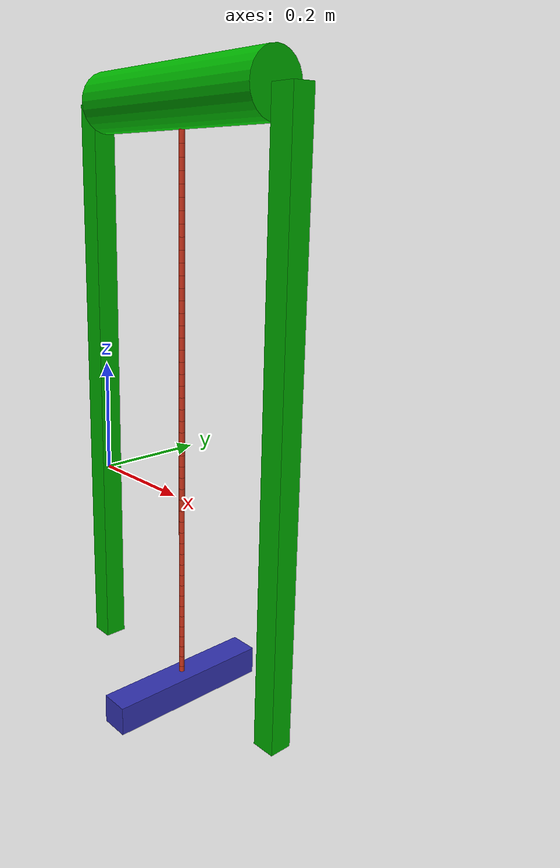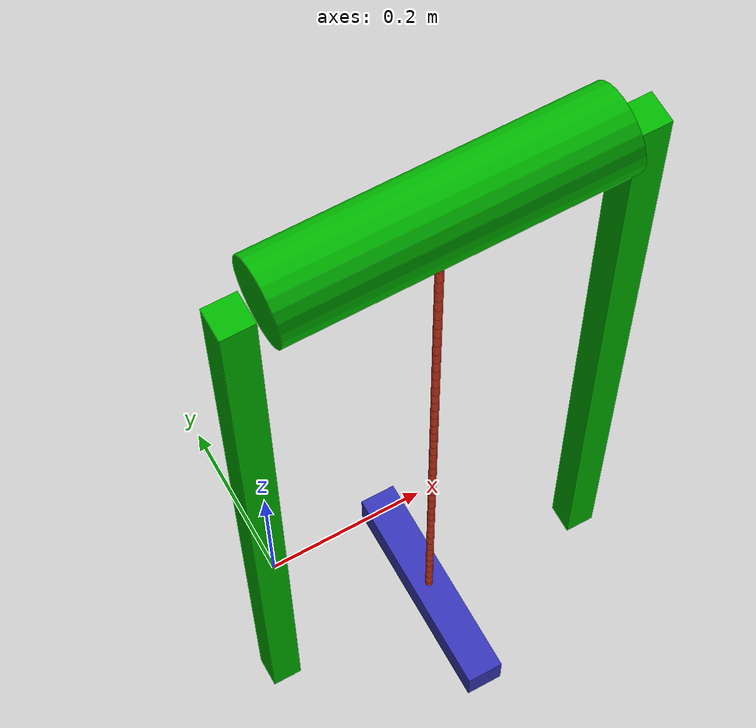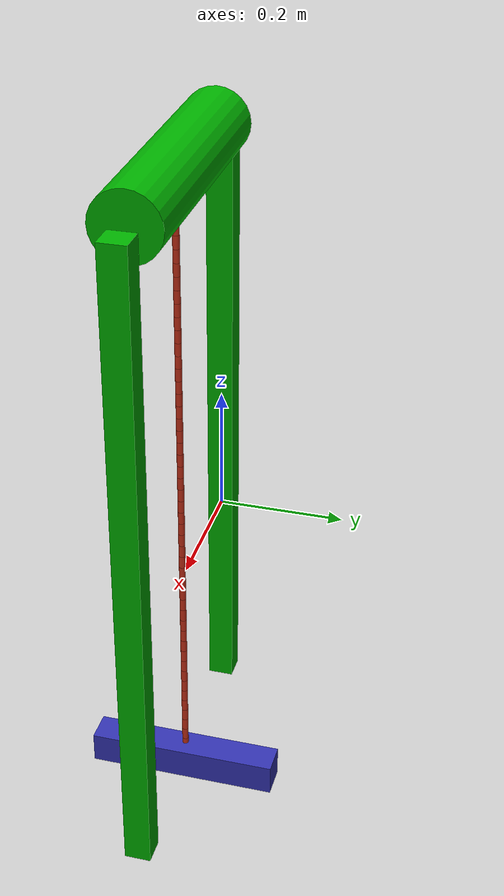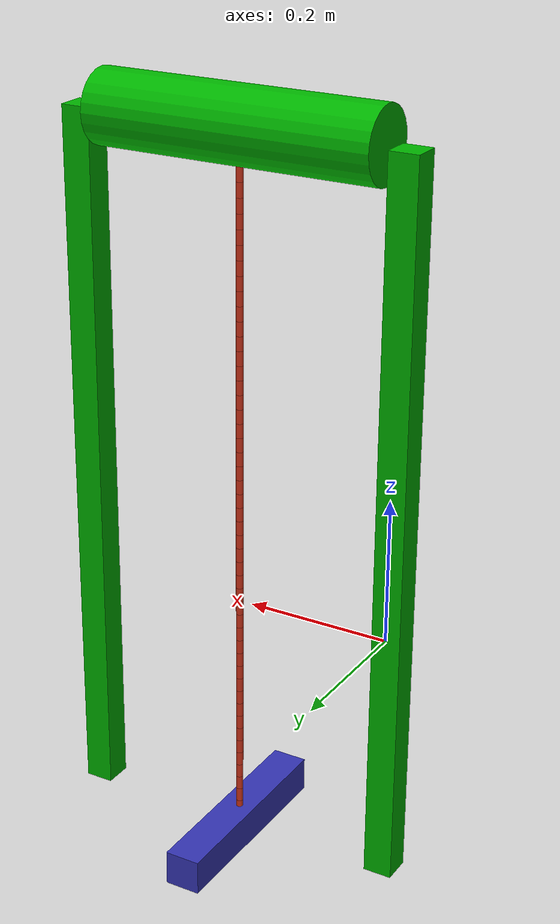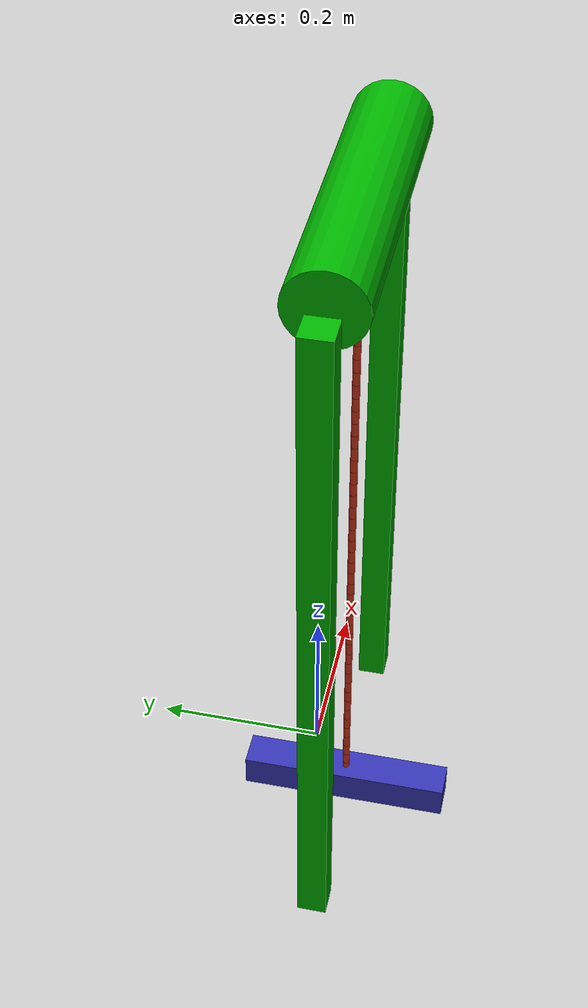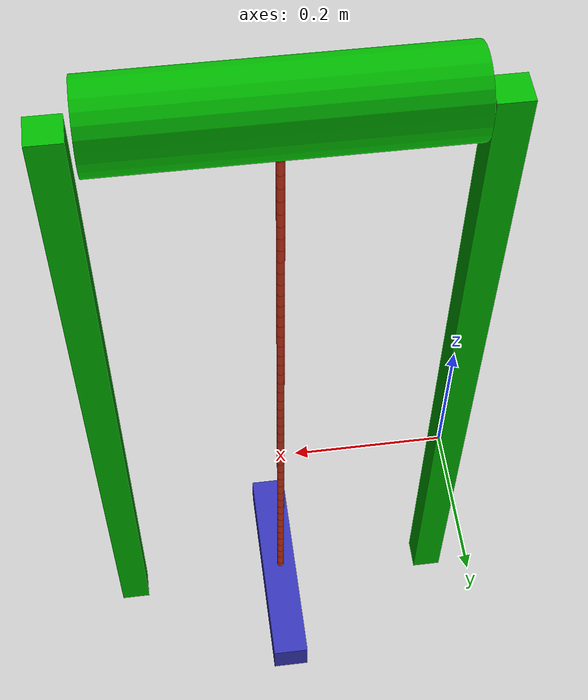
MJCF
<mujoco model="slingshot">
  <compiler angle="radian" autolimits="true"/>
  <option timestep="0.001" jacobian="dense"/>
  <size njmax="1500" nconmax="500" nkey="1"/>
  <visual>
    <global elevation="-30"/>
  </visual>
  <statistic extent="1" center="0 0 0.2"/>
  <default class="main">
    <geom friction="0.5 0.005 0.0001" solref="0.01 5" solimp="0.5 0.99 0.001 0.5 2"/>
  </default>
  <extension>
    <plugin plugin="mujoco.elasticity.cable"/>
  </extension>
  <worldbody>
    <geom name="leg1" size="0.02 0.02 0.5" pos="-0.01 0 0.15" type="box" rgba="0 0.7 0 1"/>
    <light pos="0.5 0 2" dir="0 0 -1"/>
    <body name="leg2">
      <geom name="leg2" size="0.02 0.02 0.5" pos="0.45 0 0.15" type="box" rgba="0 0.7 0 1"/>
    </body>
    <body name="pulley" pos="0.22 0 0.65" quat="0.707107 0 0.707107 0">
      <joint name="pin" pos="0 0 0" axis="0 0 1" damping="1"/>
      <geom size="0.05 0.2" type="cylinder" rgba="0 0.7 0 1"/>
      <body name="CB0">
        <geom name="CG0" size="0.005 0.01" quat="0.707107 0 0.707107 0" type="capsule" friction="1 0.005 0.0001" solref="0.02 1" solimp="0.9 0.95 0.001 0.5 2" rgba="0.8 0.2 0.1 1"/>
        <body name="CB1" pos="0.02 0 0">
          <joint name="CJ0_1" pos="-0.01 0 0" axis="0 1 0" group="3" armature="1e-05" damping="0.0001"/>
          <joint name="CJ1_1" pos="-0.01 0 0" axis="0 0 1" group="3" armature="1e-05" damping="0.0001"/>
          <geom name="CG1" size="0.005 0.01" quat="0.707107 0 0.707107 0" type="capsule" friction="1 0.005 0.0001" solref="0.02 1" solimp="0.9 0.95 0.001 0.5 2" rgba="0.8 0.2 0.1 1"/>
          <body name="CB2" pos="0.02 0 0">
            <joint name="CJ0_2" pos="-0.01 0 0" axis="0 1 0" group="3" armature="1e-05" damping="0.0001"/>
            <joint name="CJ1_2" pos="-0.01 0 0" axis="0 0 1" group="3" armature="1e-05" damping="0.0001"/>
            <geom name="CG2" size="0.005 0.01" quat="0.707107 0 0.707107 0" type="capsule" friction="1 0.005 0.0001" solref="0.02 1" solimp="0.9 0.95 0.001 0.5 2" rgba="0.8 0.2 0.1 1"/>
            <body name="CB3" pos="0.02 0 0">
              <joint name="CJ0_3" pos="-0.01 0 0" axis="0 1 0" group="3" armature="1e-05" damping="0.0001"/>
              <joint name="CJ1_3" pos="-0.01 0 0" axis="0 0 1" group="3" armature="1e-05" damping="0.0001"/>
              <geom name="CG3" size="0.005 0.01" quat="0.707107 0 0.707107 0" type="capsule" friction="1 0.005 0.0001" solref="0.02 1" solimp="0.9 0.95 0.001 0.5 2" rgba="0.8 0.2 0.1 1"/>
              <body name="CB4" pos="0.02 0 0">
                <joint name="CJ0_4" pos="-0.01 0 0" axis="0 1 0" group="3" armature="1e-05" damping="0.0001"/>
                <joint name="CJ1_4" pos="-0.01 0 0" axis="0 0 1" group="3" armature="1e-05" damping="0.0001"/>
                <geom name="CG4" size="0.005 0.01" quat="0.707107 0 0.707107 0" type="capsule" friction="1 0.005 0.0001" solref="0.02 1" solimp="0.9 0.95 0.001 0.5 2" rgba="0.8 0.2 0.1 1"/>
                <body name="CB5" pos="0.02 0 0">
                  <joint name="CJ0_5" pos="-0.01 0 0" axis="0 1 0" group="3" armature="1e-05" damping="0.0001"/>
                  <joint name="CJ1_5" pos="-0.01 0 0" axis="0 0 1" group="3" armature="1e-05" damping="0.0001"/>
                  <geom name="CG5" size="0.005 0.01" quat="0.707107 0 0.707107 0" type="capsule" friction="1 0.005 0.0001" solref="0.02 1" solimp="0.9 0.95 0.001 0.5 2" rgba="0.8 0.2 0.1 1"/>
                  <body name="CB6" pos="0.02 0 0">
                    <joint name="CJ0_6" pos="-0.01 0 0" axis="0 1 0" group="3" armature="1e-05" damping="0.0001"/>
                    <joint name="CJ1_6" pos="-0.01 0 0" axis="0 0 1" group="3" armature="1e-05" damping="0.0001"/>
                    <geom name="CG6" size="0.005 0.01" quat="0.707107 0 0.707107 0" type="capsule" friction="1 0.005 0.0001" solref="0.02 1" solimp="0.9 0.95 0.001 0.5 2" rgba="0.8 0.2 0.1 1"/>
                    <body name="CB7" pos="0.02 0 0">
                      <joint name="CJ0_7" pos="-0.01 0 0" axis="0 1 0" group="3" armature="1e-05" damping="0.0001"/>
                      <joint name="CJ1_7" pos="-0.01 0 0" axis="0 0 1" group="3" armature="1e-05" damping="0.0001"/>
                      <geom name="CG7" size="0.005 0.01" quat="0.707107 0 0.707107 0" type="capsule" friction="1 0.005 0.0001" solref="0.02 1" solimp="0.9 0.95 0.001 0.5 2" rgba="0.8 0.2 0.1 1"/>
                      <body name="CB8" pos="0.02 0 0">
                        <joint name="CJ0_8" pos="-0.01 0 0" axis="0 1 0" group="3" armature="1e-05" damping="0.0001"/>
                        <joint name="CJ1_8" pos="-0.01 0 0" axis="0 0 1" group="3" armature="1e-05" damping="0.0001"/>
                        <geom name="CG8" size="0.005 0.01" quat="0.707107 0 0.707107 0" type="capsule" friction="1 0.005 0.0001" solref="0.02 1" solimp="0.9 0.95 0.001 0.5 2" rgba="0.8 0.2 0.1 1"/>
                        <body name="CB9" pos="0.02 0 0">
                          <joint name="CJ0_9" pos="-0.01 0 0" axis="0 1 0" group="3" armature="1e-05" damping="0.0001"/>
                          <joint name="CJ1_9" pos="-0.01 0 0" axis="0 0 1" group="3" armature="1e-05" damping="0.0001"/>
                          <geom name="CG9" size="0.005 0.01" quat="0.707107 0 0.707107 0" type="capsule" friction="1 0.005 0.0001" solref="0.02 1" solimp="0.9 0.95 0.001 0.5 2" rgba="0.8 0.2 0.1 1"/>
                          <body name="CB10" pos="0.02 0 0">
                            <joint name="CJ0_10" pos="-0.01 0 0" axis="0 1 0" group="3" armature="1e-05" damping="0.0001"/>
                            <joint name="CJ1_10" pos="-0.01 0 0" axis="0 0 1" group="3" armature="1e-05" damping="0.0001"/>
                            <geom name="CG10" size="0.005 0.01" quat="0.707107 0 0.707107 0" type="capsule" friction="1 0.005 0.0001" solref="0.02 1" solimp="0.9 0.95 0.001 0.5 2" rgba="0.8 0.2 0.1 1"/>
                            <body name="CB11" pos="0.02 0 0">
                              <joint name="CJ0_11" pos="-0.01 0 0" axis="0 1 0" group="3" armature="1e-05" damping="0.0001"/>
                              <joint name="CJ1_11" pos="-0.01 0 0" axis="0 0 1" group="3" armature="1e-05" damping="0.0001"/>
                              <geom name="CG11" size="0.005 0.01" quat="0.707107 0 0.707107 0" type="capsule" friction="1 0.005 0.0001" solref="0.02 1" solimp="0.9 0.95 0.001 0.5 2" rgba="0.8 0.2 0.1 1"/>
                              <body name="CB12" pos="0.02 0 0">
                                <joint name="CJ0_12" pos="-0.01 0 0" axis="0 1 0" group="3" armature="1e-05" damping="0.0001"/>
                                <joint name="CJ1_12" pos="-0.01 0 0" axis="0 0 1" group="3" armature="1e-05" damping="0.0001"/>
                                <geom name="CG12" size="0.005 0.01" quat="0.707107 0 0.707107 0" type="capsule" friction="1 0.005 0.0001" solref="0.02 1" solimp="0.9 0.95 0.001 0.5 2" rgba="0.8 0.2 0.1 1"/>
                                <body name="CB13" pos="0.02 0 0">
                                  <joint name="CJ0_13" pos="-0.01 0 0" axis="0 1 0" group="3" armature="1e-05" damping="0.0001"/>
                                  <joint name="CJ1_13" pos="-0.01 0 0" axis="0 0 1" group="3" armature="1e-05" damping="0.0001"/>
                                  <geom name="CG13" size="0.005 0.01" quat="0.707107 0 0.707107 0" type="capsule" friction="1 0.005 0.0001" solref="0.02 1" solimp="0.9 0.95 0.001 0.5 2" rgba="0.8 0.2 0.1 1"/>
                                  <body name="CB14" pos="0.02 0 0">
                                    <joint name="CJ0_14" pos="-0.01 0 0" axis="0 1 0" group="3" armature="1e-05" damping="0.0001"/>
                                    <joint name="CJ1_14" pos="-0.01 0 0" axis="0 0 1" group="3" armature="1e-05" damping="0.0001"/>
                                    <geom name="CG14" size="0.005 0.01" quat="0.707107 0 0.707107 0" type="capsule" friction="1 0.005 0.0001" solref="0.02 1" solimp="0.9 0.95 0.001 0.5 2" rgba="0.8 0.2 0.1 1"/>
                                    <body name="CB15" pos="0.02 0 0">
                                      <joint name="CJ0_15" pos="-0.01 0 0" axis="0 1 0" group="3" armature="1e-05" damping="0.0001"/>
                                      <joint name="CJ1_15" pos="-0.01 0 0" axis="0 0 1" group="3" armature="1e-05" damping="0.0001"/>
                                      <geom name="CG15" size="0.005 0.01" quat="0.707107 0 0.707107 0" type="capsule" friction="1 0.005 0.0001" solref="0.02 1" solimp="0.9 0.95 0.001 0.5 2" rgba="0.8 0.2 0.1 1"/>
                                      <body name="CB16" pos="0.02 0 0">
                                        <joint name="CJ0_16" pos="-0.01 0 0" axis="0 1 0" group="3" armature="1e-05" damping="0.0001"/>
                                        <joint name="CJ1_16" pos="-0.01 0 0" axis="0 0 1" group="3" armature="1e-05" damping="0.0001"/>
                                        <geom name="CG16" size="0.005 0.01" quat="0.707107 0 0.707107 0" type="capsule" friction="1 0.005 0.0001" solref="0.02 1" solimp="0.9 0.95 0.001 0.5 2" rgba="0.8 0.2 0.1 1"/>
                                        <body name="CB17" pos="0.02 0 0">
                                          <joint name="CJ0_17" pos="-0.01 0 0" axis="0 1 0" group="3" armature="1e-05" damping="0.0001"/>
                                          <joint name="CJ1_17" pos="-0.01 0 0" axis="0 0 1" group="3" armature="1e-05" damping="0.0001"/>
                                          <geom name="CG17" size="0.005 0.01" quat="0.707107 0 0.707107 0" type="capsule" friction="1 0.005 0.0001" solref="0.02 1" solimp="0.9 0.95 0.001 0.5 2" rgba="0.8 0.2 0.1 1"/>
                                          <body name="CB18" pos="0.02 0 0">
                                            <joint name="CJ0_18" pos="-0.01 0 0" axis="0 1 0" group="3" armature="1e-05" damping="0.0001"/>
                                            <joint name="CJ1_18" pos="-0.01 0 0" axis="0 0 1" group="3" armature="1e-05" damping="0.0001"/>
                                            <geom name="CG18" size="0.005 0.01" quat="0.707107 0 0.707107 0" type="capsule" friction="1 0.005 0.0001" solref="0.02 1" solimp="0.9 0.95 0.001 0.5 2" rgba="0.8 0.2 0.1 1"/>
                                            <body name="CB19" pos="0.02 0 0">
                                              <joint name="CJ0_19" pos="-0.01 0 0" axis="0 1 0" group="3" armature="1e-05" damping="0.0001"/>
                                              <joint name="CJ1_19" pos="-0.01 0 0" axis="0 0 1" group="3" armature="1e-05" damping="0.0001"/>
                                              <geom name="CG19" size="0.005 0.01" quat="0.707107 0 0.707107 0" type="capsule" friction="1 0.005 0.0001" solref="0.02 1" solimp="0.9 0.95 0.001 0.5 2" rgba="0.8 0.2 0.1 1"/>
                                              <body name="CB20" pos="0.02 0 0">
                                                <joint name="CJ0_20" pos="-0.01 0 0" axis="0 1 0" group="3" armature="1e-05" damping="0.0001"/>
                                                <joint name="CJ1_20" pos="-0.01 0 0" axis="0 0 1" group="3" armature="1e-05" damping="0.0001"/>
                                                <geom name="CG20" size="0.005 0.01" quat="0.707107 0 0.707107 0" type="capsule" friction="1 0.005 0.0001" solref="0.02 1" solimp="0.9 0.95 0.001 0.5 2" rgba="0.8 0.2 0.1 1"/>
                                                <body name="CB21" pos="0.02 0 0">
                                                  <joint name="CJ0_21" pos="-0.01 0 0" axis="0 1 0" group="3" armature="1e-05" damping="0.0001"/>
                                                  <joint name="CJ1_21" pos="-0.01 0 0" axis="0 0 1" group="3" armature="1e-05" damping="0.0001"/>
                                                  <geom name="CG21" size="0.005 0.01" quat="0.707107 0 0.707107 0" type="capsule" friction="1 0.005 0.0001" solref="0.02 1" solimp="0.9 0.95 0.001 0.5 2" rgba="0.8 0.2 0.1 1"/>
                                                  <body name="CB22" pos="0.02 0 0">
                                                    <joint name="CJ0_22" pos="-0.01 0 0" axis="0 1 0" group="3" armature="1e-05" damping="0.0001"/>
                                                    <joint name="CJ1_22" pos="-0.01 0 0" axis="0 0 1" group="3" armature="1e-05" damping="0.0001"/>
                                                    <geom name="CG22" size="0.005 0.01" quat="0.707107 0 0.707107 0" type="capsule" friction="1 0.005 0.0001" solref="0.02 1" solimp="0.9 0.95 0.001 0.5 2" rgba="0.8 0.2 0.1 1"/>
                                                    <body name="CB23" pos="0.02 0 0">
                                                      <joint name="CJ0_23" pos="-0.01 0 0" axis="0 1 0" group="3" armature="1e-05" damping="0.0001"/>
                                                      <joint name="CJ1_23" pos="-0.01 0 0" axis="0 0 1" group="3" armature="1e-05" damping="0.0001"/>
                                                      <geom name="CG23" size="0.005 0.01" quat="0.707107 0 0.707107 0" type="capsule" friction="1 0.005 0.0001" solref="0.02 1" solimp="0.9 0.95 0.001 0.5 2" rgba="0.8 0.2 0.1 1"/>
                                                      <body name="CB24" pos="0.02 0 0">
                                                        <joint name="CJ0_24" pos="-0.01 0 0" axis="0 1 0" group="3" armature="1e-05" damping="0.0001"/>
                                                        <joint name="CJ1_24" pos="-0.01 0 0" axis="0 0 1" group="3" armature="1e-05" damping="0.0001"/>
                                                        <geom name="CG24" size="0.005 0.01" quat="0.707107 0 0.707107 0" type="capsule" friction="1 0.005 0.0001" solref="0.02 1" solimp="0.9 0.95 0.001 0.5 2" rgba="0.8 0.2 0.1 1"/>
                                                        <body name="CB25" pos="0.02 0 0">
                                                          <joint name="CJ0_25" pos="-0.01 0 0" axis="0 1 0" group="3" armature="1e-05" damping="0.0001"/>
                                                          <joint name="CJ1_25" pos="-0.01 0 0" axis="0 0 1" group="3" armature="1e-05" damping="0.0001"/>
                                                          <geom name="CG25" size="0.005 0.01" quat="0.707107 0 0.707107 0" type="capsule" friction="1 0.005 0.0001" solref="0.02 1" solimp="0.9 0.95 0.001 0.5 2" rgba="0.8 0.2 0.1 1"/>
                                                          <body name="CB26" pos="0.02 0 0">
                                                            <joint name="CJ0_26" pos="-0.01 0 0" axis="0 1 0" group="3" armature="1e-05" damping="0.0001"/>
                                                            <joint name="CJ1_26" pos="-0.01 0 0" axis="0 0 1" group="3" armature="1e-05" damping="0.0001"/>
                                                            <geom name="CG26" size="0.005 0.01" quat="0.707107 0 0.707107 0" type="capsule" friction="1 0.005 0.0001" solref="0.02 1" solimp="0.9 0.95 0.001 0.5 2" rgba="0.8 0.2 0.1 1"/>
                                                            <body name="CB27" pos="0.02 0 0">
                                                              <joint name="CJ0_27" pos="-0.01 0 0" axis="0 1 0" group="3" armature="1e-05" damping="0.0001"/>
                                                              <joint name="CJ1_27" pos="-0.01 0 0" axis="0 0 1" group="3" armature="1e-05" damping="0.0001"/>
                                                              <geom name="CG27" size="0.005 0.01" quat="0.707107 0 0.707107 0" type="capsule" friction="1 0.005 0.0001" solref="0.02 1" solimp="0.9 0.95 0.001 0.5 2" rgba="0.8 0.2 0.1 1"/>
                                                              <body name="CB28" pos="0.02 0 0">
                                                                <joint name="CJ0_28" pos="-0.01 0 0" axis="0 1 0" group="3" armature="1e-05" damping="0.0001"/>
                                                                <joint name="CJ1_28" pos="-0.01 0 0" axis="0 0 1" group="3" armature="1e-05" damping="0.0001"/>
                                                                <geom name="CG28" size="0.005 0.01" quat="0.707107 0 0.707107 0" type="capsule" friction="1 0.005 0.0001" solref="0.02 1" solimp="0.9 0.95 0.001 0.5 2" rgba="0.8 0.2 0.1 1"/>
                                                                <body name="CB29" pos="0.02 0 0">
                                                                  <joint name="CJ0_29" pos="-0.01 0 0" axis="0 1 0" group="3" armature="1e-05" damping="0.0001"/>
                                                                  <joint name="CJ1_29" pos="-0.01 0 0" axis="0 0 1" group="3" armature="1e-05" damping="0.0001"/>
                                                                  <geom name="CG29" size="0.005 0.01" quat="0.707107 0 0.707107 0" type="capsule" friction="1 0.005 0.0001" solref="0.02 1" solimp="0.9 0.95 0.001 0.5 2" rgba="0.8 0.2 0.1 1"/>
                                                                  <body name="CB30" pos="0.02 0 0">
                                                                    <joint name="CJ0_30" pos="-0.01 0 0" axis="0 1 0" group="3" armature="1e-05" damping="0.0001"/>
                                                                    <joint name="CJ1_30" pos="-0.01 0 0" axis="0 0 1" group="3" armature="1e-05" damping="0.0001"/>
                                                                    <geom name="CG30" size="0.005 0.01" quat="0.707107 0 0.707107 0" type="capsule" friction="1 0.005 0.0001" solref="0.02 1" solimp="0.9 0.95 0.001 0.5 2" rgba="0.8 0.2 0.1 1"/>
                                                                    <body name="CB31" pos="0.02 0 0">
                                                                      <joint name="CJ0_31" pos="-0.01 0 0" axis="0 1 0" group="3" armature="1e-05" damping="0.0001"/>
                                                                      <joint name="CJ1_31" pos="-0.01 0 0" axis="0 0 1" group="3" armature="1e-05" damping="0.0001"/>
                                                                      <geom name="CG31" size="0.005 0.01" quat="0.707107 0 0.707107 0" type="capsule" friction="1 0.005 0.0001" solref="0.02 1" solimp="0.9 0.95 0.001 0.5 2" rgba="0.8 0.2 0.1 1"/>
                                                                      <body name="CB32" pos="0.02 0 0">
                                                                        <joint name="CJ0_32" pos="-0.01 0 0" axis="0 1 0" group="3" armature="1e-05" damping="0.0001"/>
                                                                        <joint name="CJ1_32" pos="-0.01 0 0" axis="0 0 1" group="3" armature="1e-05" damping="0.0001"/>
                                                                        <geom name="CG32" size="0.005 0.01" quat="0.707107 0 0.707107 0" type="capsule" friction="1 0.005 0.0001" solref="0.02 1" solimp="0.9 0.95 0.001 0.5 2" rgba="0.8 0.2 0.1 1"/>
                                                                        <body name="CB33" pos="0.02 0 0">
                                                                          <joint name="CJ0_33" pos="-0.01 0 0" axis="0 1 0" group="3" armature="1e-05" damping="0.0001"/>
                                                                          <joint name="CJ1_33" pos="-0.01 0 0" axis="0 0 1" group="3" armature="1e-05" damping="0.0001"/>
                                                                          <geom name="CG33" size="0.005 0.01" quat="0.707107 0 0.707107 0" type="capsule" friction="1 0.005 0.0001" solref="0.02 1" solimp="0.9 0.95 0.001 0.5 2" rgba="0.8 0.2 0.1 1"/>
                                                                          <body name="CB34" pos="0.02 0 0">
                                                                            <joint name="CJ0_34" pos="-0.01 0 0" axis="0 1 0" group="3" armature="1e-05" damping="0.0001"/>
                                                                            <joint name="CJ1_34" pos="-0.01 0 0" axis="0 0 1" group="3" armature="1e-05" damping="0.0001"/>
                                                                            <geom name="CG34" size="0.005 0.01" quat="0.707107 0 0.707107 0" type="capsule" friction="1 0.005 0.0001" solref="0.02 1" solimp="0.9 0.95 0.001 0.5 2" rgba="0.8 0.2 0.1 1"/>
                                                                            <body name="CB35" pos="0.02 0 0">
                                                                              <joint name="CJ0_35" pos="-0.01 0 0" axis="0 1 0" group="3" armature="1e-05" damping="0.0001"/>
                                                                              <joint name="CJ1_35" pos="-0.01 0 0" axis="0 0 1" group="3" armature="1e-05" damping="0.0001"/>
                                                                              <geom name="CG35" size="0.005 0.01" quat="0.707107 0 0.707107 0" type="capsule" friction="1 0.005 0.0001" solref="0.02 1" solimp="0.9 0.95 0.001 0.5 2" rgba="0.8 0.2 0.1 1"/>
                                                                              <body name="CB36" pos="0.02 0 0">
                                                                                <joint name="CJ0_36" pos="-0.01 0 0" axis="0 1 0" group="3" armature="1e-05" damping="0.0001"/>
                                                                                <joint name="CJ1_36" pos="-0.01 0 0" axis="0 0 1" group="3" armature="1e-05" damping="0.0001"/>
                                                                                <geom name="CG36" size="0.005 0.01" quat="0.707107 0 0.707107 0" type="capsule" friction="1 0.005 0.0001" solref="0.02 1" solimp="0.9 0.95 0.001 0.5 2" rgba="0.8 0.2 0.1 1"/>
                                                                                <body name="CB37" pos="0.02 0 0">
                                                                                  <joint name="CJ0_37" pos="-0.01 0 0" axis="0 1 0" group="3" armature="1e-05" damping="0.0001"/>
                                                                                  <joint name="CJ1_37" pos="-0.01 0 0" axis="0 0 1" group="3" armature="1e-05" damping="0.0001"/>
                                                                                  <geom name="CG37" size="0.005 0.01" quat="0.707107 0 0.707107 0" type="capsule" friction="1 0.005 0.0001" solref="0.02 1" solimp="0.9 0.95 0.001 0.5 2" rgba="0.8 0.2 0.1 1"/>
                                                                                  <body name="CB38" pos="0.02 0 0">
                                                                                    <joint name="CJ0_38" pos="-0.01 0 0" axis="0 1 0" group="3" armature="1e-05" damping="0.0001"/>
                                                                                    <joint name="CJ1_38" pos="-0.01 0 0" axis="0 0 1" group="3" armature="1e-05" damping="0.0001"/>
                                                                                    <geom name="CG38" size="0.005 0.01" quat="0.707107 0 0.707107 0" type="capsule" friction="1 0.005 0.0001" solref="0.02 1" solimp="0.9 0.95 0.001 0.5 2" rgba="0.8 0.2 0.1 1"/>
                                                                                    <body name="CB39" pos="0.02 0 0">
                                                                                      <joint name="CJ0_39" pos="-0.01 0 0" axis="0 1 0" group="3" armature="1e-05" damping="0.0001"/>
                                                                                      <joint name="CJ1_39" pos="-0.01 0 0" axis="0 0 1" group="3" armature="1e-05" damping="0.0001"/>
                                                                                      <geom name="CG39" size="0.005 0.01" quat="0.707107 0 0.707107 0" type="capsule" friction="1 0.005 0.0001" solref="0.02 1" solimp="0.9 0.95 0.001 0.5 2" rgba="0.8 0.2 0.1 1"/>
                                                                                      <body name="CB40" pos="0.02 0 0">
                                                                                        <joint name="CJ0_40" pos="-0.01 0 0" axis="0 1 0" group="3" armature="1e-05" damping="0.0001"/>
                                                                                        <joint name="CJ1_40" pos="-0.01 0 0" axis="0 0 1" group="3" armature="1e-05" damping="0.0001"/>
                                                                                        <geom name="CG40" size="0.005 0.01" quat="0.707107 0 0.707107 0" type="capsule" friction="1 0.005 0.0001" solref="0.02 1" solimp="0.9 0.95 0.001 0.5 2" rgba="0.8 0.2 0.1 1"/>
                                                                                        <body name="CB41" pos="0.02 0 0">
                                                                                          <joint name="CJ0_41" pos="-0.01 0 0" axis="0 1 0" group="3" armature="1e-05" damping="0.0001"/>
                                                                                          <joint name="CJ1_41" pos="-0.01 0 0" axis="0 0 1" group="3" armature="1e-05" damping="0.0001"/>
                                                                                          <geom name="CG41" size="0.005 0.01" quat="0.707107 0 0.707107 0" type="capsule" friction="1 0.005 0.0001" solref="0.02 1" solimp="0.9 0.95 0.001 0.5 2" rgba="0.8 0.2 0.1 1"/>
                                                                                          <body name="CB42" pos="0.02 0 0">
                                                                                            <joint name="CJ0_42" pos="-0.01 0 0" axis="0 1 0" group="3" armature="1e-05" damping="0.0001"/>
                                                                                            <joint name="CJ1_42" pos="-0.01 0 0" axis="0 0 1" group="3" armature="1e-05" damping="0.0001"/>
                                                                                            <geom name="CG42" size="0.005 0.01" quat="0.707107 0 0.707107 0" type="capsule" friction="1 0.005 0.0001" solref="0.02 1" solimp="0.9 0.95 0.001 0.5 2" rgba="0.8 0.2 0.1 1"/>
                                                                                            <body name="CB43" pos="0.02 0 0">
                                                                                              <joint name="CJ0_43" pos="-0.01 0 0" axis="0 1 0" group="3" armature="1e-05" damping="0.0001"/>
                                                                                              <joint name="CJ1_43" pos="-0.01 0 0" axis="0 0 1" group="3" armature="1e-05" damping="0.0001"/>
                                                                                              <geom name="CG43" size="0.005 0.01" quat="0.707107 0 0.707107 0" type="capsule" friction="1 0.005 0.0001" solref="0.02 1" solimp="0.9 0.95 0.001 0.5 2" rgba="0.8 0.2 0.1 1"/>
                                                                                              <body name="CB44" pos="0.02 0 0">
                                                                                                <joint name="CJ0_44" pos="-0.01 0 0" axis="0 1 0" group="3" armature="1e-05" damping="0.0001"/>
                                                                                                <joint name="CJ1_44" pos="-0.01 0 0" axis="0 0 1" group="3" armature="1e-05" damping="0.0001"/>
                                                                                                <geom name="CG44" size="0.005 0.01" quat="0.707107 0 0.707107 0" type="capsule" friction="1 0.005 0.0001" solref="0.02 1" solimp="0.9 0.95 0.001 0.5 2" rgba="0.8 0.2 0.1 1"/>
                                                                                                <body name="CB45" pos="0.02 0 0">
                                                                                                  <joint name="CJ0_45" pos="-0.01 0 0" axis="0 1 0" group="3" armature="1e-05" damping="0.0001"/>
                                                                                                  <joint name="CJ1_45" pos="-0.01 0 0" axis="0 0 1" group="3" armature="1e-05" damping="0.0001"/>
                                                                                                  <geom name="CG45" size="0.005 0.01" quat="0.707107 0 0.707107 0" type="capsule" friction="1 0.005 0.0001" solref="0.02 1" solimp="0.9 0.95 0.001 0.5 2" rgba="0.8 0.2 0.1 1"/>
                                                                                                  <body name="CB46" pos="0.02 0 0">
                                                                                                    <joint name="CJ0_46" pos="-0.01 0 0" axis="0 1 0" group="3" armature="1e-05" damping="0.0001"/>
                                                                                                    <joint name="CJ1_46" pos="-0.01 0 0" axis="0 0 1" group="3" armature="1e-05" damping="0.0001"/>
                                                                                                    <geom name="CG46" size="0.005 0.01" quat="0.707107 0 0.707107 0" type="capsule" friction="1 0.005 0.0001" solref="0.02 1" solimp="0.9 0.95 0.001 0.5 2" rgba="0.8 0.2 0.1 1"/>
                                                                                                    <body name="CB47" pos="0.02 0 0">
                                                                                                      <joint name="CJ0_47" pos="-0.01 0 0" axis="0 1 0" group="3" armature="1e-05" damping="0.0001"/>
                                                                                                      <joint name="CJ1_47" pos="-0.01 0 0" axis="0 0 1" group="3" armature="1e-05" damping="0.0001"/>
                                                                                                      <geom name="CG47" size="0.005 0.01" quat="0.707107 0 0.707107 0" type="capsule" friction="1 0.005 0.0001" solref="0.02 1" solimp="0.9 0.95 0.001 0.5 2" rgba="0.8 0.2 0.1 1"/>
                                                                                                      <body name="CB48" pos="0.02 0 0">
                                                                                                        <joint name="CJ0_48" pos="-0.01 0 0" axis="0 1 0" group="3" armature="1e-05" damping="0.0001"/>
                                                                                                        <joint name="CJ1_48" pos="-0.01 0 0" axis="0 0 1" group="3" armature="1e-05" damping="0.0001"/>
                                                                                                        <geom name="CG48" size="0.005 0.01" quat="0.707107 0 0.707107 0" type="capsule" friction="1 0.005 0.0001" solref="0.02 1" solimp="0.9 0.95 0.001 0.5 2" rgba="0.8 0.2 0.1 1"/>
                                                                                                        <body name="CB49" pos="0.02 0 0">
                                                                                                          <joint name="CJ0_49" pos="-0.01 0 0" axis="0 1 0" group="3" armature="1e-05" damping="0.0001"/>
                                                                                                          <joint name="CJ1_49" pos="-0.01 0 0" axis="0 0 1" group="3" armature="1e-05" damping="0.0001"/>
                                                                                                          <geom name="CG49" size="0.005 0.01" quat="0.707107 0 0.707107 0" type="capsule" friction="1 0.005 0.0001" solref="0.02 1" solimp="0.9 0.95 0.001 0.5 2" rgba="0.8 0.2 0.1 1"/>
                                                                                                        </body>
                                                                                                      </body>
                                                                                                    </body>
                                                                                                  </body>
                                                                                                </body>
                                                                                              </body>
                                                                                            </body>
                                                                                          </body>
                                                                                        </body>
                                                                                      </body>
                                                                                    </body>
                                                                                  </body>
                                                                                </body>
                                                                              </body>
                                                                            </body>
                                                                          </body>
                                                                        </body>
                                                                      </body>
                                                                    </body>
                                                                  </body>
                                                                </body>
                                                              </body>
                                                            </body>
                                                          </body>
                                                        </body>
                                                      </body>
                                                    </body>
                                                  </body>
                                                </body>
                                              </body>
                                            </body>
                                          </body>
                                        </body>
                                      </body>
                                    </body>
                                  </body>
                                </body>
                              </body>
                            </body>
                          </body>
                        </body>
                      </body>
                    </body>
                  </body>
                </body>
              </body>
            </body>
          </body>
        </body>
      </body>
    </body>
    <body name="weight" pos="0.2225 0 -0.355">
      <joint type="free"/>
      <geom size="0.025 0.15 0.025" type="box" rgba="0.2 0.2 0.7 1"/>
    </body>
  </worldbody>
  <equality>
    <connect body1="weight" body2="CB49" anchor="0 0 0" solref="-10000 -1000"/>
  </equality>
  <actuator>
    <general name="motor" joint="pin" ctrlrange="-10 10"/>
  </actuator>
</mujoco>
